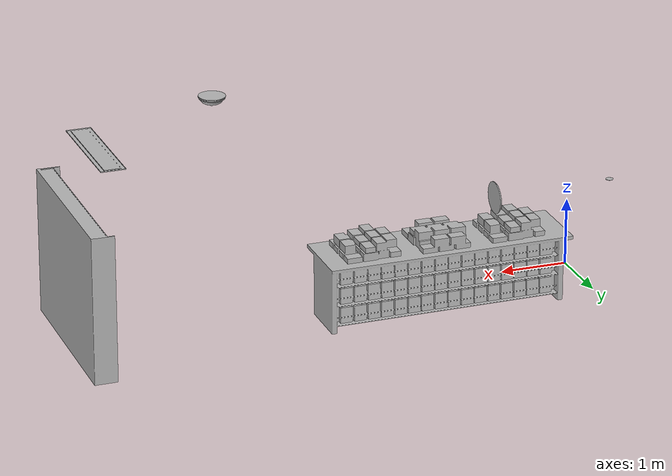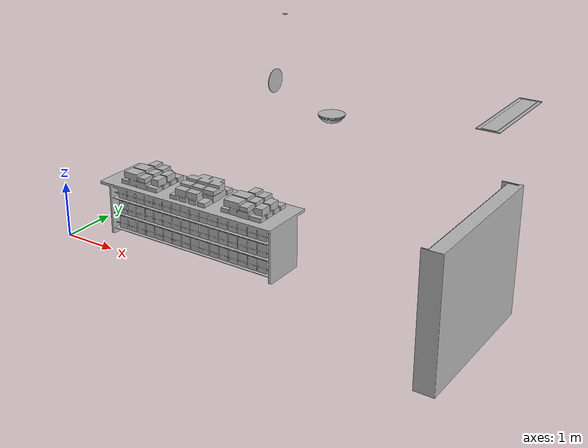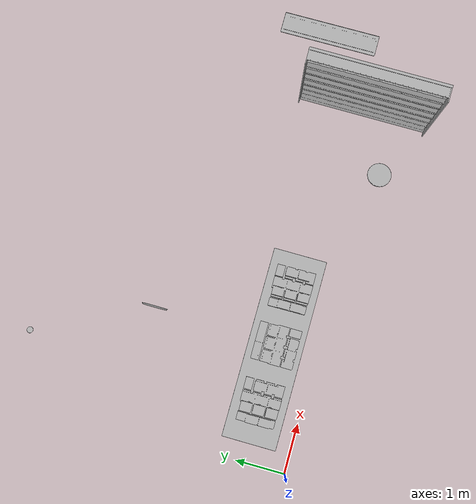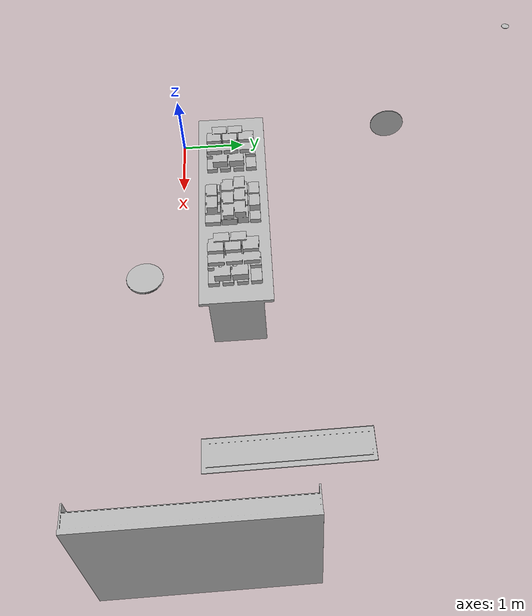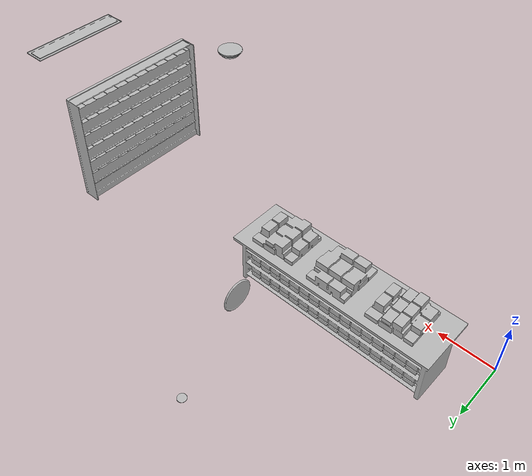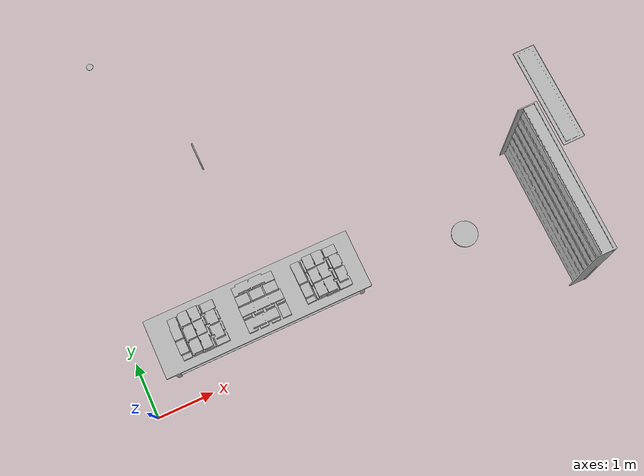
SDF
<sdf version="1.7">
 <world name="default">
  <model name="AirConditionerC_01_001">
   <frame name="aws_robomaker_retail_AirConditionerC_01::__model__" attached_to="aws_robomaker_retail_AirConditionerC_01::link">
    <pose relative_to="__model__">0 0 0 0 -0 0</pose>
   </frame>
   <link name="aws_robomaker_retail_AirConditionerC_01::link">
    <inertial><mass>50</mass></inertial>
    <collision name="collision">
     <geometry>
      <mesh>
       <uri>file://models/aws_robomaker_retail_AirConditionerC_01/meshes/aws_AirConditionerC_01_collision.DAE</uri>
       <scale>1 1 1</scale>
      </mesh>
     </geometry>
    </collision>
    <visual name="visual">
     <geometry>
      <mesh>
       <uri>file://models/aws_robomaker_retail_AirConditionerC_01/meshes/aws_AirConditionerC_01_visual.DAE</uri>
      </mesh>
     </geometry>
     <meta><layer>3</layer></meta>
    </visual>
    <pose relative_to="aws_robomaker_retail_AirConditionerC_01::__model__">0 0 0 0 -0 0</pose>
   </link>
   <static>1</static>
   <pose>7.4582 1.42245 3.29094 0 0 -1.56422</pose>
  </model>
  <model name="BookF_01_004">
   <frame name="aws_robomaker_retail_BookF_01::__model__" attached_to="aws_robomaker_retail_BookF_01::link">
    <pose relative_to="__model__">0 0 0 0 -0 0</pose>
   </frame>
   <link name="aws_robomaker_retail_BookF_01::link">
    <inertial>
     <mass>10</mass>
     <inertia>
      <ixx>0.583817</ixx>
      <ixy>0</ixy>
      <ixz>0</ixz>
      <iyy>0.502925</iyy>
      <iyz>0</iyz>
      <izz>0.99304</izz>
     </inertia>
    </inertial>
    <collision name="collision">
     <geometry>
      <mesh>
       <uri>file://models/aws_robomaker_retail_BookF_01/meshes/aws_BookF_01_collision.DAE</uri>
       <scale>1 1 1</scale>
      </mesh>
     </geometry>
    </collision>
    <visual name="visual">
     <geometry>
      <mesh><uri>file://models/aws_robomaker_retail_BookF_01/meshes/aws_BookF_01_visual.DAE</uri></mesh>
     </geometry>
     <meta><layer>1</layer></meta>
    </visual>
    <pose relative_to="aws_robomaker_retail_BookF_01::__model__">0 0 0 0 -0 0</pose>
   </link>
   <static>1</static>
   <pose>1.26164 0.856469 1.03816 8e-06 -0 1.58038</pose>
  </model>
  <model name="BookD_01_004">
   <frame name="aws_robomaker_retail_BookD_01::__model__" attached_to="aws_robomaker_retail_BookD_01::link">
    <pose relative_to="__model__">0 0 0 0 -0 0</pose>
   </frame>
   <link name="aws_robomaker_retail_BookD_01::link">
    <inertial><mass>0.5</mass></inertial>
    <collision name="collision">
     <geometry>
      <mesh>
       <uri>file://models/aws_robomaker_retail_BookD_01/meshes/aws_BookD_01_collision.DAE</uri>
       <scale>1 1 1</scale>
      </mesh>
     </geometry>
    </collision>
    <visual name="visual">
     <geometry>
      <mesh><uri>file://models/aws_robomaker_retail_BookD_01/meshes/aws_BookD_01_visual.DAE</uri></mesh>
     </geometry>
     <meta><layer>1</layer></meta>
    </visual>
    <pose relative_to="aws_robomaker_retail_BookD_01::__model__">0 0 0 0 -0 0</pose>
   </link>
   <static>1</static>
   <pose>2.35863 0.854853 1.03815 6e-06 -0 0.001712</pose>
  </model>
  <model name="BookF_01_005">
   <frame name="aws_robomaker_retail_BookF_01::__model__" attached_to="aws_robomaker_retail_BookF_01::link">
    <pose relative_to="__model__">0 0 0 0 -0 0</pose>
   </frame>
   <link name="aws_robomaker_retail_BookF_01::link">
    <inertial>
     <mass>10</mass>
     <inertia>
      <ixx>0.583817</ixx>
      <ixy>0</ixy>
      <ixz>0</ixz>
      <iyy>0.502925</iyy>
      <iyz>0</iyz>
      <izz>0.99304</izz>
     </inertia>
    </inertial>
    <collision name="collision">
     <geometry>
      <mesh>
       <uri>file://models/aws_robomaker_retail_BookF_01/meshes/aws_BookF_01_collision.DAE</uri>
       <scale>1 1 1</scale>
      </mesh>
     </geometry>
    </collision>
    <visual name="visual">
     <geometry>
      <mesh><uri>file://models/aws_robomaker_retail_BookF_01/meshes/aws_BookF_01_visual.DAE</uri></mesh>
     </geometry>
     <meta><layer>1</layer></meta>
    </visual>
    <pose relative_to="aws_robomaker_retail_BookF_01::__model__">0 0 0 0 -0 0</pose>
   </link>
   <static>1</static>
   <pose>3.43061 0.856469 1.03816 8e-06 -0 1.58038</pose>
  </model>
  <model name="BookshelfB_01_008">
   <frame name="aws_robomaker_retail_BookshelfB_01::__model__" attached_to="aws_robomaker_retail_BookshelfB_01::link">
    <pose relative_to="__model__">0 0 0 0 -0 0</pose>
   </frame>
   <link name="aws_robomaker_retail_BookshelfB_01::link">
    <inertial>
     <mass>50</mass>
     <inertia><ixx>19.8742</ixx><ixy>0</ixy><ixz>0</ixz><iyy>49.1263</iyy><iyz>0</iyz><izz>30.2231</izz></inertia>
    </inertial>
    <collision name="collision">
     <geometry>
      <mesh>
       <uri>file://models/aws_robomaker_retail_BookshelfB_01/meshes/aws_BookshelfB_01_collision.DAE</uri>
       <scale>1 1 1</scale>
      </mesh>
     </geometry>
    </collision>
    <visual name="visual">
     <geometry>
      <mesh><uri>file://models/aws_robomaker_retail_BookshelfB_01/meshes/aws_BookshelfB_01_visual.DAE</uri></mesh>
     </geometry>
     <meta><layer>1</layer></meta>
    </visual>
    <pose relative_to="aws_robomaker_retail_BookshelfB_01::__model__">0 0 0 0 -0 0</pose>
   </link>
   <static>1</static>
   <pose>7.47833 0.402539 0.017181 3e-06 -0.000156 1.5708</pose>
  </model>
  <model name="DeskA_01_005">
   <frame name="aws_robomaker_retail_DeskA_01::__model__" attached_to="aws_robomaker_retail_DeskA_01::link">
    <pose relative_to="__model__">0 0 0 0 -0 0</pose>
   </frame>
   <link name="aws_robomaker_retail_DeskA_01::link">
    <inertial>
     <mass>20</mass>
     <inertia><ixx>3.49717</ixx><ixy>0</ixy><ixz>0</ixz><iyy>23.5599</iyy><iyz>0</iyz><izz>23.5702</izz></inertia>
    </inertial>
    <collision name="collision">
     <geometry>
      <mesh>
       <uri>file://models/aws_robomaker_retail_DeskA_01/meshes/aws_DeskA_01_collision.DAE</uri>
       <scale>1 1 1</scale>
      </mesh>
     </geometry>
    </collision>
    <visual name="visual">
     <geometry>
      <mesh><uri>file://models/aws_robomaker_retail_DeskA_01/meshes/aws_DeskA_01_visual.DAE</uri></mesh>
     </geometry>
     <meta><layer>1</layer></meta>
    </visual>
    <pose relative_to="aws_robomaker_retail_DeskA_01::__model__">0 0 0 0 -0 0</pose>
   </link>
   <static>1</static>
   <pose>2.2982 0.861754 0.014883 -2e-06 0.003451 2.4e-05</pose>
  </model>
  <model name="Horologe_01_001">
   <frame name="aws_robomaker_retail_Horologe_01::__model__" attached_to="aws_robomaker_retail_Horologe_01::link">
    <pose relative_to="__model__">0 0 0 0 -0 0</pose>
   </frame>
   <link name="aws_robomaker_retail_Horologe_01::link">
    <inertial><mass>1</mass></inertial>
    <collision name="collision">
     <geometry>
      <mesh>
       <uri>file://models/aws_robomaker_retail_Horologe_01/meshes/aws_Horologe_01_collision.DAE</uri>
       <scale>1 1 1</scale>
      </mesh>
     </geometry>
    </collision>
    <visual name="visual">
     <geometry>
      <mesh><uri>file://models/aws_robomaker_retail_Horologe_01/meshes/aws_Horologe_01_visual.DAE</uri></mesh>
     </geometry>
     <meta><layer>2</layer></meta>
    </visual>
    <pose relative_to="aws_robomaker_retail_Horologe_01::__model__">0 0 0 0 -0 0</pose>
   </link>
   <static>1</static>
   <pose>2.40512 3.02571 2.52519 0 0 -1.56558</pose>
  </model>
  <model name="LightA_01_003">
   <frame name="aws_robomaker_retail_LightA_01::__model__" attached_to="aws_robomaker_retail_LightA_01::link">
    <pose relative_to="__model__">0 0 0 0 -0 0</pose>
   </frame>
   <link name="aws_robomaker_retail_LightA_01::link">
    <inertial><mass>1</mass></inertial>
    <collision name="collision">
     <geometry>
      <mesh>
       <uri>file://models/aws_robomaker_retail_LightA_01/meshes/aws_LightA_01_collision.DAE</uri>
       <scale>1 1 1</scale>
      </mesh>
     </geometry>
    </collision>
    <visual name="visual">
     <geometry>
      <mesh><uri>file://models/aws_robomaker_retail_LightA_01/meshes/aws_LightA_01_visual.DAE</uri></mesh>
     </geometry>
     <meta><layer>3</layer></meta>
    </visual>
    <pose relative_to="aws_robomaker_retail_LightA_01::__model__">0 0 0 0 -0 0</pose>
   </link>
   <static>1</static>
   <pose>5.38399 0.04192 3.15033 0 -0 0</pose>
  </model>
  <model name="Spotlight_01_001">
   <frame name="aws_robomaker_retail_Spotlight_01::__model__" attached_to="aws_robomaker_retail_Spotlight_01::link">
    <pose relative_to="__model__">0 0 0 0 -0 0</pose>
   </frame>
   <link name="aws_robomaker_retail_Spotlight_01::link">
    <inertial><mass>1</mass></inertial>
    <collision name="collision">
     <geometry>
      <mesh>
       <uri>file://models/aws_robomaker_retail_Spotlight_01/meshes/aws_Spotlight_01_collision.DAE</uri>
       <scale>1 1 1</scale>
      </mesh>
     </geometry>
    </collision>
    <visual name="visual">
     <geometry>
      <mesh><uri>file://models/aws_robomaker_retail_Spotlight_01/meshes/aws_Spotlight_01_visual.DAE</uri></mesh>
     </geometry>
     <meta><layer>3</layer></meta>
    </visual>
    <pose relative_to="aws_robomaker_retail_Spotlight_01::__model__">0 0 0 0 -0 0</pose>
   </link>
   <static>1</static>
   <pose>1.4932 4.69237 3.30266 0 -0 0</pose>
  </model>
 </world>
</sdf>
